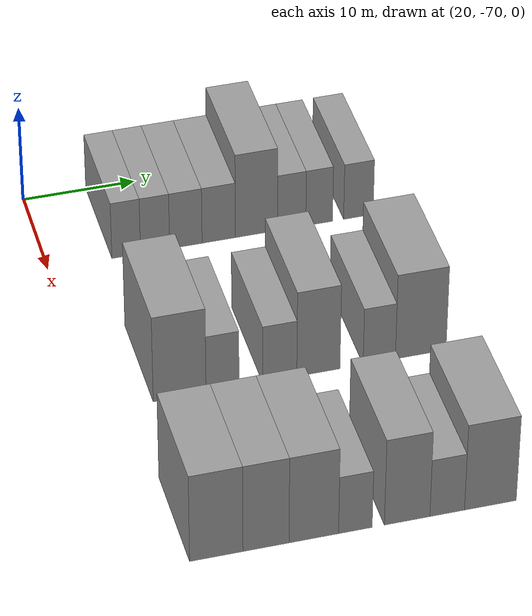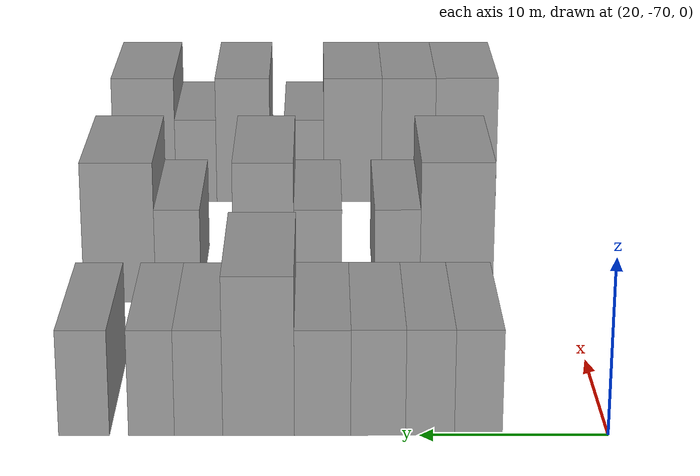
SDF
<sdf version="1.6">
 <world name="default">
  <model name="building_46">
   <static>1</static>
   <pose>25.0000 -63.1187 0 0.000000 0.000000 0.000000</pose>
   <link name="link">
    <pose>0 0 3.00 0 0 0</pose>
    <collision name="collision"><geometry><box><size>10.0000 2.5330 6.0000</size></box></geometry></collision>
    <visual name="visual">
     <cast_shadows>0</cast_shadows>
     <geometry><box><size>10.0000 2.5330 6.0000</size></box></geometry>
     <material>
      <script>
       <uri>model://grey_wall/materials/scripts</uri>
       <uri>model://grey_wall/materials/textures</uri>
       <name>vrc/grey_wall</name>
      </script>
     </material>
    </visual>
   </link>
  </model>
  <model name="building_47">
   <static>1</static>
   <pose>25.0000 -60.5588 0 0.000000 0.000000 0.000000</pose>
   <link name="link">
    <pose>0 0 3.00 0 0 0</pose>
    <collision name="collision"><geometry><box><size>10.0000 2.5867 6.0000</size></box></geometry></collision>
    <visual name="visual">
     <cast_shadows>0</cast_shadows>
     <geometry><box><size>10.0000 2.5867 6.0000</size></box></geometry>
     <material>
      <script>
       <uri>model://grey_wall/materials/scripts</uri>
       <uri>model://grey_wall/materials/textures</uri>
       <name>vrc/grey_wall</name>
      </script>
     </material>
    </visual>
   </link>
  </model>
  <model name="building_48">
   <static>1</static>
   <pose>25.0000 -57.8193 0 0.000000 0.000000 0.000000</pose>
   <link name="link">
    <pose>0 0 3.00 0 0 0</pose>
    <collision name="collision"><geometry><box><size>10.0000 2.8924 6.0000</size></box></geometry></collision>
    <visual name="visual">
     <cast_shadows>0</cast_shadows>
     <geometry><box><size>10.0000 2.8924 6.0000</size></box></geometry>
     <material>
      <script>
       <uri>model://grey_wall/materials/scripts</uri>
       <uri>model://grey_wall/materials/textures</uri>
       <name>vrc/grey_wall</name>
      </script>
     </material>
    </visual>
   </link>
  </model>
  <model name="building_49">
   <static>1</static>
   <pose>25.0000 -54.8866 0 0.000000 0.000000 0.000000</pose>
   <link name="link">
    <pose>0 0 3.00 0 0 0</pose>
    <collision name="collision"><geometry><box><size>10.0000 2.9731 6.0000</size></box></geometry></collision>
    <visual name="visual">
     <cast_shadows>0</cast_shadows>
     <geometry><box><size>10.0000 2.9731 6.0000</size></box></geometry>
     <material>
      <script>
       <uri>model://grey_wall/materials/scripts</uri>
       <uri>model://grey_wall/materials/textures</uri>
       <name>vrc/grey_wall</name>
      </script>
     </material>
    </visual>
   </link>
  </model>
  <model name="building_50">
   <static>1</static>
   <pose>25.0000 -51.5060 0 0.000000 0.000000 0.000000</pose>
   <link name="link">
    <pose>0 0 4.50 0 0 0</pose>
    <collision name="collision"><geometry><box><size>10.0000 3.7880 9.0000</size></box></geometry></collision>
    <visual name="visual">
     <cast_shadows>0</cast_shadows>
     <geometry><box><size>10.0000 3.7880 9.0000</size></box></geometry>
     <material>
      <script>
       <uri>model://grey_wall/materials/scripts</uri>
       <uri>model://grey_wall/materials/textures</uri>
       <name>vrc/grey_wall</name>
      </script>
     </material>
    </visual>
   </link>
  </model>
  <model name="building_51">
   <static>1</static>
   <pose>25.0000 -48.3364 0 0.000000 0.000000 0.000000</pose>
   <link name="link">
    <pose>0 0 3.00 0 0 0</pose>
    <collision name="collision"><geometry><box><size>10.0000 2.5512 6.0000</size></box></geometry></collision>
    <visual name="visual">
     <cast_shadows>0</cast_shadows>
     <geometry><box><size>10.0000 2.5512 6.0000</size></box></geometry>
     <material>
      <script>
       <uri>model://grey_wall/materials/scripts</uri>
       <uri>model://grey_wall/materials/textures</uri>
       <name>vrc/grey_wall</name>
      </script>
     </material>
    </visual>
   </link>
  </model>
  <model name="building_52">
   <static>1</static>
   <pose>25.0000 -45.8467 0 0.000000 0.000000 0.000000</pose>
   <link name="link">
    <pose>0 0 3.00 0 0 0</pose>
    <collision name="collision"><geometry><box><size>10.0000 2.4283 6.0000</size></box></geometry></collision>
    <visual name="visual">
     <cast_shadows>0</cast_shadows>
     <geometry><box><size>10.0000 2.4283 6.0000</size></box></geometry>
     <material>
      <script>
       <uri>model://grey_wall/materials/scripts</uri>
       <uri>model://grey_wall/materials/textures</uri>
       <name>vrc/grey_wall</name>
      </script>
     </material>
    </visual>
   </link>
  </model>
  <model name="building_53">
   <static>1</static>
   <pose>25.0000 -42.2886 0 0.000000 0.000000 0.000000</pose>
   <link name="link">
    <pose>0 0 3.00 0 0 0</pose>
    <collision name="collision"><geometry><box><size>10.0000 2.6879 6.0000</size></box></geometry></collision>
    <visual name="visual">
     <cast_shadows>0</cast_shadows>
     <geometry><box><size>10.0000 2.6879 6.0000</size></box></geometry>
     <material>
      <script>
       <uri>model://grey_wall/materials/scripts</uri>
       <uri>model://grey_wall/materials/textures</uri>
       <name>vrc/grey_wall</name>
      </script>
     </material>
    </visual>
   </link>
  </model>
  <model name="building_161">
   <static>1</static>
   <pose>44.0000 -63.1510 0 0.000000 0.000000 0.000000</pose>
   <link name="link">
    <pose>0 0 4.50 0 0 0</pose>
    <collision name="collision"><geometry><box><size>10.0000 4.4802 9.0000</size></box></geometry></collision>
    <visual name="visual">
     <cast_shadows>0</cast_shadows>
     <geometry><box><size>10.0000 4.4802 9.0000</size></box></geometry>
     <material>
      <script>
       <uri>model://grey_wall/materials/scripts</uri>
       <uri>model://grey_wall/materials/textures</uri>
       <name>vrc/grey_wall</name>
      </script>
     </material>
    </visual>
   </link>
  </model>
  <model name="building_162">
   <static>1</static>
   <pose>44.0000 -59.5054 0 0.000000 0.000000 0.000000</pose>
   <link name="link">
    <pose>0 0 3.00 0 0 0</pose>
    <collision name="collision"><geometry><box><size>10.0000 2.8110 6.0000</size></box></geometry></collision>
    <visual name="visual">
     <cast_shadows>0</cast_shadows>
     <geometry><box><size>10.0000 2.8110 6.0000</size></box></geometry>
     <material>
      <script>
       <uri>model://grey_wall/materials/scripts</uri>
       <uri>model://grey_wall/materials/textures</uri>
       <name>vrc/grey_wall</name>
      </script>
     </material>
    </visual>
   </link>
  </model>
  <model name="building_163">
   <static>1</static>
   <pose>44.0000 -54.6286 0 0.000000 0.000000 0.000000</pose>
   <link name="link">
    <pose>0 0 3.00 0 0 0</pose>
    <collision name="collision"><geometry><box><size>10.0000 2.9427 6.0000</size></box></geometry></collision>
    <visual name="visual">
     <cast_shadows>0</cast_shadows>
     <geometry><box><size>10.0000 2.9427 6.0000</size></box></geometry>
     <material>
      <script>
       <uri>model://grey_wall/materials/scripts</uri>
       <uri>model://grey_wall/materials/textures</uri>
       <name>vrc/grey_wall</name>
      </script>
     </material>
    </visual>
   </link>
  </model>
  <model name="building_164">
   <static>1</static>
   <pose>44.0000 -51.2977 0 0.000000 0.000000 0.000000</pose>
   <link name="link">
    <pose>0 0 4.50 0 0 0</pose>
    <collision name="collision"><geometry><box><size>10.0000 3.7189 9.0000</size></box></geometry></collision>
    <visual name="visual">
     <cast_shadows>0</cast_shadows>
     <geometry><box><size>10.0000 3.7189 9.0000</size></box></geometry>
     <material>
      <script>
       <uri>model://grey_wall/materials/scripts</uri>
       <uri>model://grey_wall/materials/textures</uri>
       <name>vrc/grey_wall</name>
      </script>
     </material>
    </visual>
   </link>
  </model>
  <model name="building_165">
   <static>1</static>
   <pose>44.0000 -46.0404 0 0.000000 0.000000 0.000000</pose>
   <link name="link">
    <pose>0 0 3.00 0 0 0</pose>
    <collision name="collision"><geometry><box><size>10.0000 2.7958 6.0000</size></box></geometry></collision>
    <visual name="visual">
     <cast_shadows>0</cast_shadows>
     <geometry><box><size>10.0000 2.7958 6.0000</size></box></geometry>
     <material>
      <script>
       <uri>model://grey_wall/materials/scripts</uri>
       <uri>model://grey_wall/materials/textures</uri>
       <name>vrc/grey_wall</name>
      </script>
     </material>
    </visual>
   </link>
  </model>
  <model name="building_166">
   <static>1</static>
   <pose>44.0000 -42.4334 0 0.000000 0.000000 0.000000</pose>
   <link name="link">
    <pose>0 0 4.50 0 0 0</pose>
    <collision name="collision"><geometry><box><size>10.0000 4.4182 9.0000</size></box></geometry></collision>
    <visual name="visual">
     <cast_shadows>0</cast_shadows>
     <geometry><box><size>10.0000 4.4182 9.0000</size></box></geometry>
     <material>
      <script>
       <uri>model://grey_wall/materials/scripts</uri>
       <uri>model://grey_wall/materials/textures</uri>
       <name>vrc/grey_wall</name>
      </script>
     </material>
    </visual>
   </link>
  </model>
  <model name="building_273">
   <static>1</static>
   <pose>63.0000 -64.9792 0 0.000000 0.000000 0.000000</pose>
   <link name="link">
    <pose>0 0 4.50 0 0 0</pose>
    <collision name="collision"><geometry><box><size>10.0000 4.3157 9.0000</size></box></geometry></collision>
    <visual name="visual">
     <cast_shadows>0</cast_shadows>
     <geometry><box><size>10.0000 4.3157 9.0000</size></box></geometry>
     <material>
      <script>
       <uri>model://grey_wall/materials/scripts</uri>
       <uri>model://grey_wall/materials/textures</uri>
       <name>vrc/grey_wall</name>
      </script>
     </material>
    </visual>
   </link>
  </model>
  <model name="building_274">
   <static>1</static>
   <pose>63.0000 -60.9510 0 0.000000 0.000000 0.000000</pose>
   <link name="link">
    <pose>0 0 4.50 0 0 0</pose>
    <collision name="collision"><geometry><box><size>10.0000 3.7407 9.0000</size></box></geometry></collision>
    <visual name="visual">
     <cast_shadows>0</cast_shadows>
     <geometry><box><size>10.0000 3.7407 9.0000</size></box></geometry>
     <material>
      <script>
       <uri>model://grey_wall/materials/scripts</uri>
       <uri>model://grey_wall/materials/textures</uri>
       <name>vrc/grey_wall</name>
      </script>
     </material>
    </visual>
   </link>
  </model>
  <model name="building_275">
   <static>1</static>
   <pose>63.0000 -57.0568 0 0.000000 0.000000 0.000000</pose>
   <link name="link">
    <pose>0 0 4.50 0 0 0</pose>
    <collision name="collision"><geometry><box><size>10.0000 4.0478 9.0000</size></box></geometry></collision>
    <visual name="visual">
     <cast_shadows>0</cast_shadows>
     <geometry><box><size>10.0000 4.0478 9.0000</size></box></geometry>
     <material>
      <script>
       <uri>model://grey_wall/materials/scripts</uri>
       <uri>model://grey_wall/materials/textures</uri>
       <name>vrc/grey_wall</name>
      </script>
     </material>
    </visual>
   </link>
  </model>
  <model name="building_276">
   <static>1</static>
   <pose>63.0000 -53.6514 0 0.000000 0.000000 0.000000</pose>
   <link name="link">
    <pose>0 0 3.00 0 0 0</pose>
    <collision name="collision"><geometry><box><size>10.0000 2.7629 6.0000</size></box></geometry></collision>
    <visual name="visual">
     <cast_shadows>0</cast_shadows>
     <geometry><box><size>10.0000 2.7629 6.0000</size></box></geometry>
     <material>
      <script>
       <uri>model://grey_wall/materials/scripts</uri>
       <uri>model://grey_wall/materials/textures</uri>
       <name>vrc/grey_wall</name>
      </script>
     </material>
    </visual>
   </link>
  </model>
  <model name="building_277">
   <static>1</static>
   <pose>63.0000 -49.3901 0 0.000000 0.000000 0.000000</pose>
   <link name="link">
    <pose>0 0 4.50 0 0 0</pose>
    <collision name="collision"><geometry><box><size>10.0000 3.7598 9.0000</size></box></geometry></collision>
    <visual name="visual">
     <cast_shadows>0</cast_shadows>
     <geometry><box><size>10.0000 3.7598 9.0000</size></box></geometry>
     <material>
      <script>
       <uri>model://grey_wall/materials/scripts</uri>
       <uri>model://grey_wall/materials/textures</uri>
       <name>vrc/grey_wall</name>
      </script>
     </material>
    </visual>
   </link>
  </model>
  <model name="building_278">
   <static>1</static>
   <pose>63.0000 -46.0747 0 0.000000 0.000000 0.000000</pose>
   <link name="link">
    <pose>0 0 3.00 0 0 0</pose>
    <collision name="collision"><geometry><box><size>10.0000 2.8709 6.0000</size></box></geometry></collision>
    <visual name="visual">
     <cast_shadows>0</cast_shadows>
     <geometry><box><size>10.0000 2.8709 6.0000</size></box></geometry>
     <material>
      <script>
       <uri>model://grey_wall/materials/scripts</uri>
       <uri>model://grey_wall/materials/textures</uri>
       <name>vrc/grey_wall</name>
      </script>
     </material>
    </visual>
   </link>
  </model>
  <model name="building_279">
   <static>1</static>
   <pose>63.0000 -42.4796 0 0.000000 0.000000 0.000000</pose>
   <link name="link">
    <pose>0 0 4.50 0 0 0</pose>
    <collision name="collision"><geometry><box><size>10.0000 4.3192 9.0000</size></box></geometry></collision>
    <visual name="visual">
     <cast_shadows>0</cast_shadows>
     <geometry><box><size>10.0000 4.3192 9.0000</size></box></geometry>
     <material>
      <script>
       <uri>model://grey_wall/materials/scripts</uri>
       <uri>model://grey_wall/materials/textures</uri>
       <name>vrc/grey_wall</name>
      </script>
     </material>
    </visual>
   </link>
  </model>
 </world>
</sdf>
